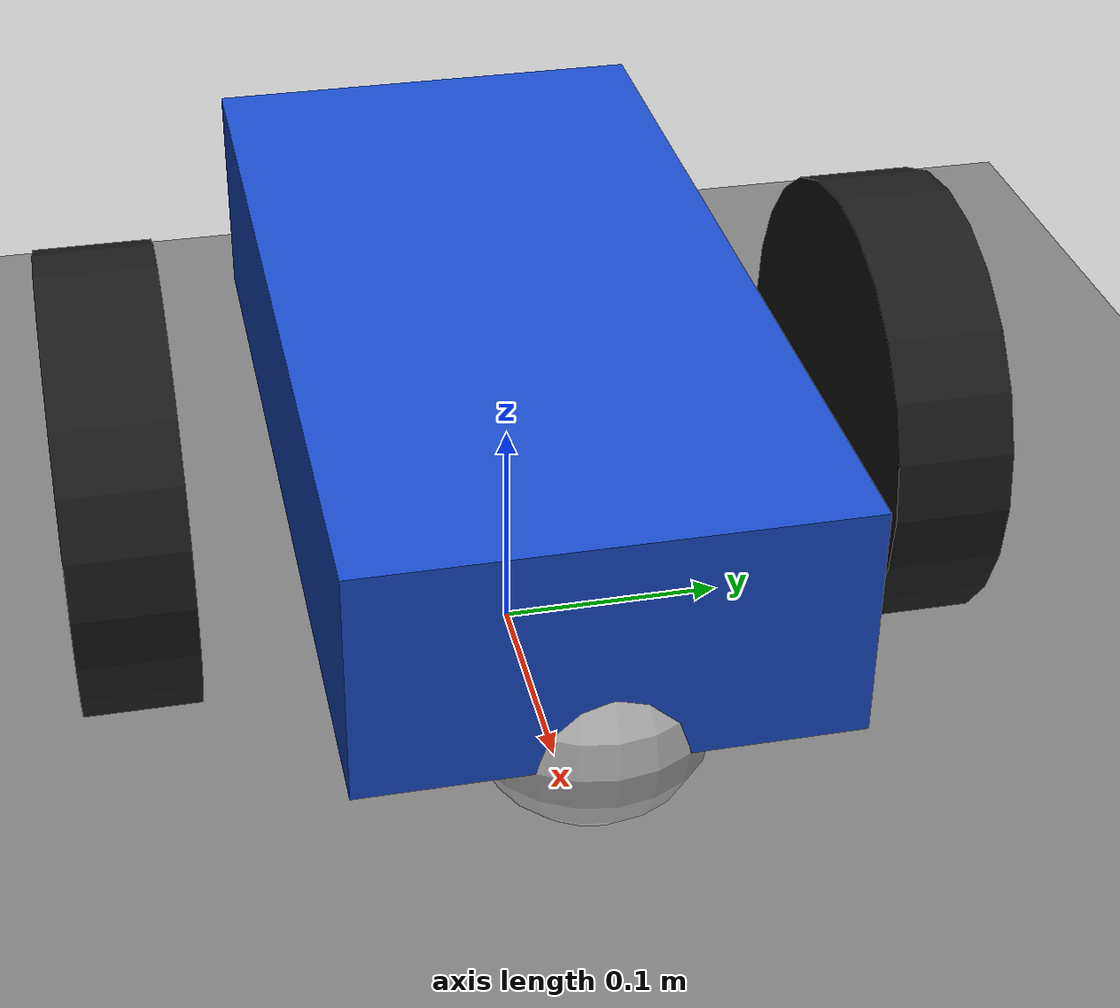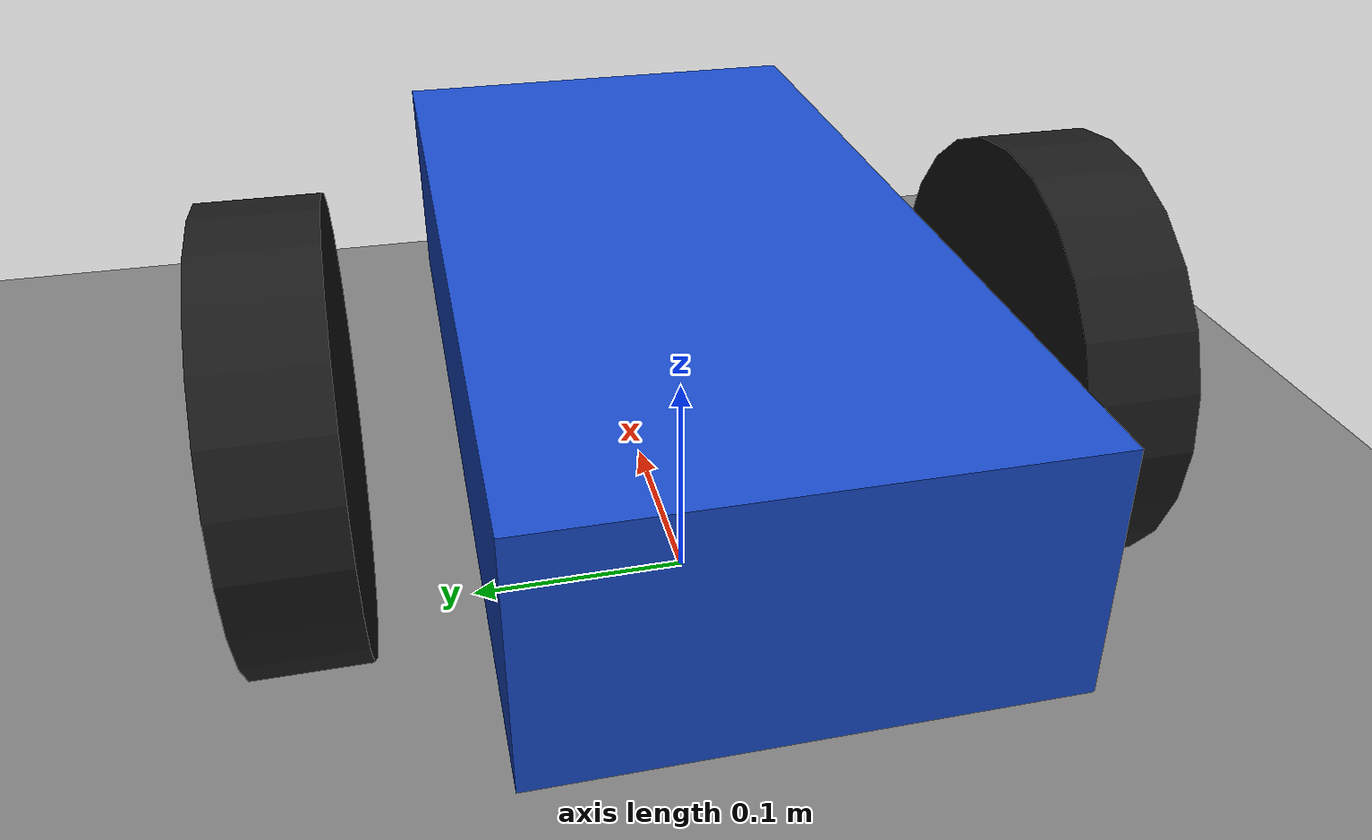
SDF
<?xml version="1.0" ?>
<sdf version="1.9">
  <world name="diff_drive_world">

    <physics name="1ms" type="ode">
      <max_step_size>0.001</max_step_size>
      <real_time_factor>1.0</real_time_factor>
    </physics>

    <plugin filename="gz-sim-physics-system" name="gz::sim::systems::Physics"></plugin>
    <plugin filename="gz-sim-user-commands-system" name="gz::sim::systems::UserCommands"></plugin>
    <plugin filename="gz-sim-scene-broadcaster-system" name="gz::sim::systems::SceneBroadcaster"></plugin>

    <light type="directional" name="sun">
      <cast_shadows>true</cast_shadows>
      <pose>0 0 10 0 0 0</pose>
      <diffuse>0.8 0.8 0.8 1</diffuse>
      <specular>0.2 0.2 0.2 1</specular>
      <attenuation>
        <range>1000</range>
        <constant>0.9</constant>
        <linear>0.01</linear>
        <quadratic>0.001</quadratic>
      </attenuation>
      <direction>-0.5 0.1 -0.9</direction>
    </light>

    <model name="ground_plane">
      <static>true</static>
      <link name="link">
        <collision name="collision">
          <geometry>
            <plane>
              <normal>0 0 1</normal>
              <size>100 100</size>
            </plane>
          </geometry>
          <surface>
            <friction>
              <ode>
                <mu>1.0</mu>
                <mu2>1.0</mu2>
              </ode>
            </friction>
          </surface>
        </collision>
        <visual name="visual">
          <geometry>
            <plane>
              <normal>0 0 1</normal>
              <size>100 100</size>
            </plane>
          </geometry>
          <material>
            <ambient>0.3 0.3 0.3 1</ambient>
            <diffuse>0.5 0.5 0.5 1</diffuse>
            <specular>0.2 0.2 0.2 1</specular>
          </material>
        </visual>
      </link>
    </model>

    <model name="diff_drive_robot">
      <pose>0 0 0.13 0 0 0</pose>

      <link name="chassis">
        <pose relative_to="__model__">0 0 0 0 0 0</pose>
        <inertial>
          <mass>1.5</mass>
          <inertia>
            <ixx>0.0125</ixx>
            <iyy>0.0325</iyy>
            <izz>0.04</izz>
            <ixy>0</ixy>
            <ixz>0</ixz>
            <iyz>0</iyz>
          </inertia>
        </inertial>
        <visual name="visual">
          <geometry>
            <box>
              <size>0.4 0.2 0.1</size>
            </box>
          </geometry>
          <material>
            <ambient>0.1 0.3 0.8 1</ambient>
            <diffuse>0.1 0.3 0.8 1</diffuse>
          </material>
        </visual>
        <collision name="collision">
          <geometry>
            <box>
              <size>0.4 0.2 0.1</size>
            </box>
          </geometry>
        </collision>
      </link>

      <link name="left_wheel">
        <pose relative_to="chassis">0 0.17 -0.03 -1.5707963 0 0</pose>
        <inertial>
          <mass>0.5</mass>
          <inertia>
            <ixx>0.00071667</ixx>
            <iyy>0.00071667</iyy>
            <izz>0.00125</izz>
            <ixy>0</ixy>
            <ixz>0</ixz>
            <iyz>0</iyz>
          </inertia>
        </inertial>
        <visual name="visual">
          <geometry>
            <cylinder>
              <radius>0.1</radius>
              <length>0.05</length>
            </cylinder>
          </geometry>
          <material>
            <ambient>0.1 0.1 0.1 1</ambient>
            <diffuse>0.1 0.1 0.1 1</diffuse>
          </material>
        </visual>
        <collision name="collision">
          <geometry>
            <cylinder>
              <radius>0.1</radius>
              <length>0.05</length>
            </cylinder>
          </geometry>
          <surface>
            <friction>
              <ode>
                <mu>1.5</mu>
                <mu2>1.5</mu2>
              </ode>
            </friction>
          </surface>
        </collision>
      </link>

      <link name="right_wheel">
        <pose relative_to="chassis">0 -0.17 -0.03 -1.5707963 0 0</pose>
        <inertial>
          <mass>0.5</mass>
          <inertia>
            <ixx>0.00071667</ixx>
            <iyy>0.00071667</iyy>
            <izz>0.00125</izz>
            <ixy>0</ixy>
            <ixz>0</ixz>
            <iyz>0</iyz>
          </inertia>
        </inertial>
        <visual name="visual">
          <geometry>
            <cylinder>
              <radius>0.1</radius>
              <length>0.05</length>
            </cylinder>
          </geometry>
          <material>
            <ambient>0.1 0.1 0.1 1</ambient>
            <diffuse>0.1 0.1 0.1 1</diffuse>
          </material>
        </visual>
        <collision name="collision">
          <geometry>
            <cylinder>
              <radius>0.1</radius>
              <length>0.05</length>
            </cylinder>
          </geometry>
          <surface>
            <friction>
              <ode>
                <mu>1.5</mu>
                <mu2>1.5</mu2>
              </ode>
            </friction>
          </surface>
        </collision>
      </link>

      <link name="caster">
        <pose relative_to="chassis">0.16 0 -0.05 0 0 0</pose>
        <inertial>
          <mass>0.2</mass>
          <inertia>
            <ixx>0.0001</ixx>
            <iyy>0.0001</iyy>
            <izz>0.0001</izz>
            <ixy>0</ixy>
            <ixz>0</ixz>
            <iyz>0</iyz>
          </inertia>
        </inertial>
        <visual name="visual">
          <geometry>
            <sphere>
              <radius>0.05</radius>
            </sphere>
          </geometry>
        </visual>
        <collision name="collision">
          <geometry>
            <sphere>
              <radius>0.05</radius>
            </sphere>
          </geometry>
          <surface>
            <friction>
              <ode>
                <mu>0</mu>
                <mu2>0</mu2>
              </ode>
            </friction>
          </surface>
        </collision>
      </link>

      <joint name="left_wheel_joint" type="revolute">
        <parent>chassis</parent>
        <child>left_wheel</child>
        <axis>
          <xyz expressed_in="__model__">0 1 0</xyz>
          <limit>
            <lower>-1.79769e+308</lower>
            <upper>1.79769e+308</upper>
          </limit>
        </axis>
      </joint>

      <joint name="right_wheel_joint" type="revolute">
        <parent>chassis</parent>
        <child>right_wheel</child>
        <axis>
          <xyz expressed_in="__model__">0 1 0</xyz>
          <limit>
            <lower>-1.79769e+308</lower>
            <upper>1.79769e+308</upper>
          </limit>
        </axis>
      </joint>

      <joint name="caster_joint" type="ball">
        <parent>chassis</parent>
        <child>caster</child>
      </joint>

      <plugin filename="gz-sim-diff-drive-system" name="gz::sim::systems::DiffDrive">
        <left_joint>left_wheel_joint</left_joint>
        <right_joint>right_wheel_joint</right_joint>
        <wheel_separation>0.34</wheel_separation>
        <wheel_radius>0.1</wheel_radius>
        <odom_publish_frequency>50</odom_publish_frequency>
        <topic>/cmd_vel</topic>
        <odom_topic>/odom</odom_topic>
        <tf_topic>/tf</tf_topic>
        <frame_id>odom</frame_id>
        <child_frame_id>chassis</child_frame_id>
      </plugin>

      <plugin filename="gz-sim-joint-state-publisher-system" name="gz::sim::systems::JointStatePublisher"></plugin>

    </model>

  </world>
</sdf>
